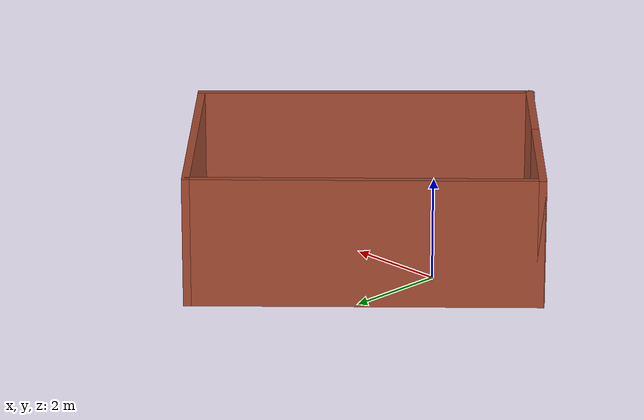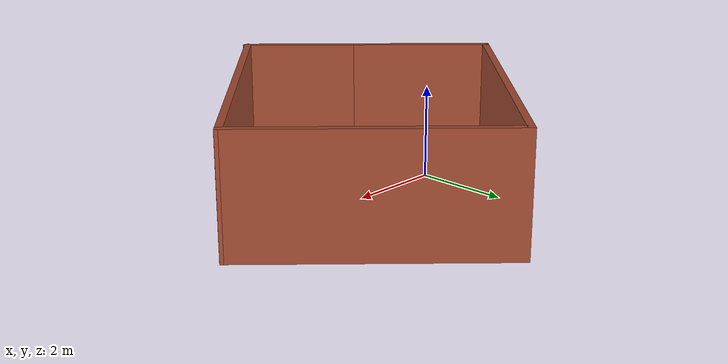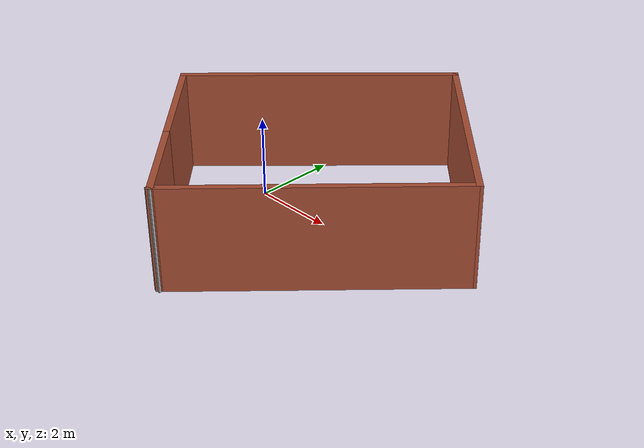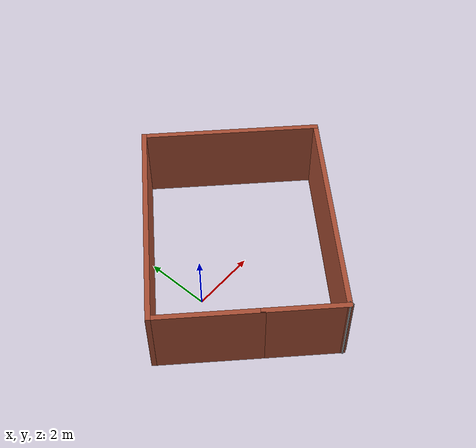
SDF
<?xml version='1.0'?>
<sdf version='1.6'>
  <model name='room'>
    <pose frame=''>1.78293 0.038618 0 0 -0 0</pose>
    <link name='Wall_1'>
      <collision name='Wall_1_Collision'>
        <geometry>
          <box>
            <size>3.25 0.15 2.5</size>
          </box>
        </geometry>
        <pose frame=''>0 0 1.25 0 -0 0</pose>
      </collision>
      <visual name='Wall_1_Visual'>
        <pose frame=''>0 0 1.25 0 -0 0</pose>
        <geometry>
          <box>
            <size>3.25 0.15 2.5</size>
          </box>
        </geometry>
        <material>
          <script>
            <uri>file://media/materials/scripts/gazebo.material</uri>
            <name>Gazebo/Bricks</name>
          </script>
          <ambient>1 1 1 1</ambient>
        </material>
        <meta>
          <layer>0</layer>
        </meta>
      </visual>
      <pose frame=''>-3.12895 -1.5026 0 0 -0 2.35619</pose>
    </link>
    <link name='Wall_10'>
      <collision name='Wall_10_Collision'>
        <geometry>
          <box>
            <size>5.5 0.15 2.5</size>
          </box>
        </geometry>
        <pose frame=''>0 0 1.25 0 -0 0</pose>
      </collision>
      <visual name='Wall_10_Visual'>
        <pose frame=''>0 0 1.25 0 -0 0</pose>
        <geometry>
          <box>
            <size>5.5 0.15 2.5</size>
          </box>
        </geometry>
        <material>
          <script>
            <uri>file://media/materials/scripts/gazebo.material</uri>
            <name>Gazebo/Bricks</name>
          </script>
          <ambient>1 1 1 1</ambient>
        </material>
        <meta>
          <layer>0</layer>
        </meta>
      </visual>
      <pose frame=''>2.33345 2.36881 0 0 -0 2.35619</pose>
    </link>
    <link name='Wall_4'>
      <collision name='Wall_4_Collision'>
        <geometry>
          <box>
            <size>6.75 0.15 2.5</size>
          </box>
        </geometry>
        <pose frame=''>0 0 1.25 0 -0 0</pose>
      </collision>
      <visual name='Wall_4_Visual'>
        <pose frame=''>0 0 1.25 0 -0 0</pose>
        <geometry>
          <box>
            <size>6.75 0.15 2.5</size>
          </box>
        </geometry>
        <material>
          <script>
            <uri>file://media/materials/scripts/gazebo.material</uri>
            <name>Gazebo/Bricks</name>
          </script>
          <ambient>1 1 1 1</ambient>
        </material>
        <meta>
          <layer>0</layer>
        </meta>
      </visual>
      <pose frame=''>-1.89151 1.92687 0 0 -0 0.785398</pose>
    </link>
    <link name='Wall_6'>
      <collision name='Wall_6_Collision'>
        <geometry>
          <box>
            <size>2.5 0.15 2.5</size>
          </box>
        </geometry>
        <pose frame=''>0 0 1.25 0 -0 0</pose>
      </collision>
      <visual name='Wall_6_Visual'>
        <pose frame=''>0 0 1.25 0 -0 0</pose>
        <geometry>
          <box>
            <size>2.5 0.15 2.5</size>
          </box>
        </geometry>
        <material>
          <script>
            <uri>file://media/materials/scripts/gazebo.material</uri>
            <name>Gazebo/Bricks</name>
          </script>
          <ambient>1 1 1 1</ambient>
        </material>
        <meta>
          <layer>0</layer>
        </meta>
      </visual>
      <pose frame=''>-1.20208 -3.42947 0 0 -0 -0.785398</pose>
    </link>
    <link name='Wall_7'>
      <collision name='Wall_7_Collision'>
        <geometry>
          <box>
            <size>0.16 0.15 2.5</size>
          </box>
        </geometry>
        <pose frame=''>0 0 1.25 0 -0 0</pose>
      </collision>
      <visual name='Wall_7_Visual'>
        <pose frame=''>0 0 1.25 0 -0 0</pose>
        <geometry>
          <box>
            <size>0.16 0.15 2.5</size>
          </box>
        </geometry>
        <material>
          <script>
            <uri>file://media/materials/scripts/gazebo.material</uri>
            <name>Gazebo/Grey</name>
          </script>
          <ambient>1 1 1 1</ambient>
        </material>
        <meta>
          <layer>0</layer>
        </meta>
      </visual>
      <pose frame=''>-0.366231 -4.26032 0 0 -0 0</pose>
    </link>
    <link name='Wall_9'>
      <collision name='Wall_9_Collision'>
        <geometry>
          <box>
            <size>6.75076 0.15 2.5</size>
          </box>
        </geometry>
        <pose frame=''>0 0 1.25 0 -0 0</pose>
      </collision>
      <visual name='Wall_9_Visual'>
        <pose frame=''>0 0 1.25 0 -0 0</pose>
        <geometry>
          <box>
            <size>6.75076 0.15 2.5</size>
          </box>
        </geometry>
        <material>
          <script>
            <uri>file://media/materials/scripts/gazebo.material</uri>
            <name>Gazebo/Bricks</name>
          </script>
          <ambient>1 1 1 1</ambient>
        </material>
        <meta>
          <layer>0</layer>
        </meta>
      </visual>
      <pose frame=''>1.92687 -1.89151 0 0 -0 0.800549</pose>
    </link>
    <static>1</static>
  </model>
</sdf>
